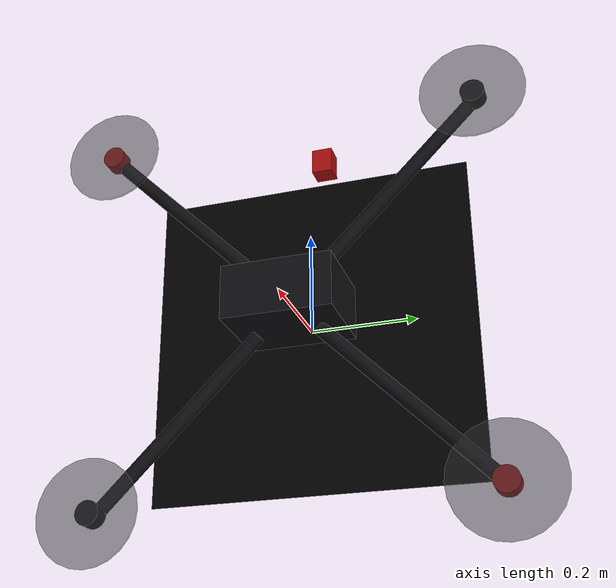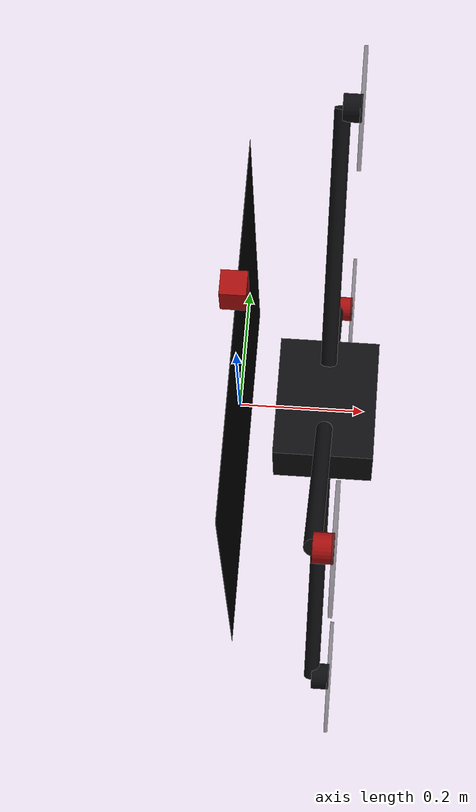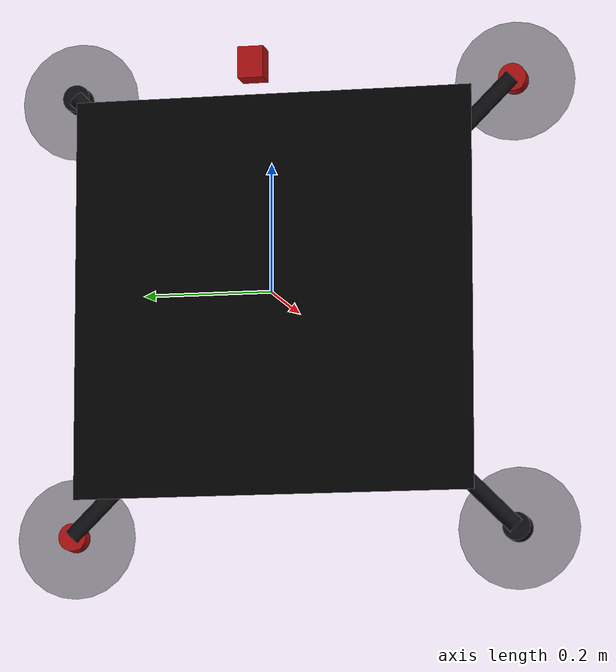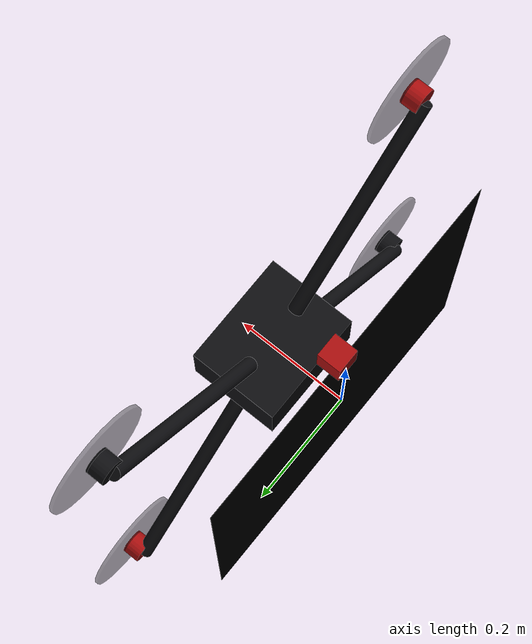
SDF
<?xml version="1.0" encoding="UTF-8"?>
<sdf version='1.9'>
  <model name='fpv_target'>
    <static>true</static>
    <link name='base'>

      <!-- ================= THE TAG (unchanged -- see header) ================= -->
      <visual name='tag_visual'>
        <pose>0 0 0 0 -1.5708 0</pose>
        <geometry>
          <plane>
            <normal>0 0 1</normal>
            <size>0.625 0.625</size>
          </plane>
        </geometry>
        <material>
          <ambient>0 0 0 1</ambient>
          <diffuse>0 0 0 1</diffuse>
          <specular>0 0 0 1</specular>
          <pbr>
            <metal>
              <albedo_map>model://apriltag_target/tag36h11_00000.png</albedo_map>
              <emissive_map>model://apriltag_target/tag36h11_00000.png</emissive_map>
              <roughness>1.0</roughness>
              <metalness>0.0</metalness>
            </metal>
          </pbr>
        </material>
      </visual>

      <visual name='body_visual'>
        <pose>0.14 0 0 0 0 -1.570796</pose>
        <geometry>
          <box>
            <size>0.20 0.16 0.10</size>
          </box>
        </geometry>
        <material>
          <ambient>0.03 0.03 0.035 1</ambient>
          <diffuse>0.05 0.05 0.06 1</diffuse>
          <specular>0.25 0.25 0.28 1</specular>
        </material>
      </visual>

      <visual name='arm_ne_visual'>
        <pose>0.14 -0.205061 0.205061 0.785398 0 0</pose>
        <geometry>
          <cylinder>
            <radius>0.013</radius>
            <length>0.42</length>
          </cylinder>
        </geometry>
        <material>
          <ambient>0.03 0.03 0.035 1</ambient>
          <diffuse>0.05 0.05 0.06 1</diffuse>
          <specular>0.25 0.25 0.28 1</specular>
        </material>
      </visual>
      <visual name='arm_se_visual'>
        <pose>0.14 -0.205061 -0.205061 2.356194 0 0</pose>
        <geometry>
          <cylinder>
            <radius>0.013</radius>
            <length>0.42</length>
          </cylinder>
        </geometry>
        <material>
          <ambient>0.03 0.03 0.035 1</ambient>
          <diffuse>0.05 0.05 0.06 1</diffuse>
          <specular>0.25 0.25 0.28 1</specular>
        </material>
      </visual>
      <visual name='arm_sw_visual'>
        <pose>0.14 0.205061 -0.205061 3.926991 0 0</pose>
        <geometry>
          <cylinder>
            <radius>0.013</radius>
            <length>0.42</length>
          </cylinder>
        </geometry>
        <material>
          <ambient>0.03 0.03 0.035 1</ambient>
          <diffuse>0.05 0.05 0.06 1</diffuse>
          <specular>0.25 0.25 0.28 1</specular>
        </material>
      </visual>
      <visual name='arm_nw_visual'>
        <pose>0.14 0.205061 0.205061 5.497787 0 0</pose>
        <geometry>
          <cylinder>
            <radius>0.013</radius>
            <length>0.42</length>
          </cylinder>
        </geometry>
        <material>
          <ambient>0.03 0.03 0.035 1</ambient>
          <diffuse>0.05 0.05 0.06 1</diffuse>
          <specular>0.25 0.25 0.28 1</specular>
        </material>
      </visual>

      <visual name='prop_ne_visual'>
        <pose>0.17 -0.353553 0.353553 0 1.570796 0</pose>
        <geometry>
          <cylinder>
            <radius>0.095</radius>
            <length>0.006</length>
          </cylinder>
        </geometry>
        <transparency>0.5</transparency>
        <material>
          <ambient>0.15 0.15 0.16 1</ambient>
          <diffuse>0.18 0.18 0.19 1</diffuse>
          <specular>0.3 0.3 0.3 1</specular>
        </material>
      </visual>
      <visual name='prop_se_visual'>
        <pose>0.17 -0.353553 -0.353553 0 1.570796 0</pose>
        <geometry>
          <cylinder>
            <radius>0.095</radius>
            <length>0.006</length>
          </cylinder>
        </geometry>
        <transparency>0.5</transparency>
        <material>
          <ambient>0.15 0.15 0.16 1</ambient>
          <diffuse>0.18 0.18 0.19 1</diffuse>
          <specular>0.3 0.3 0.3 1</specular>
        </material>
      </visual>
      <visual name='prop_sw_visual'>
        <pose>0.17 0.353553 -0.353553 0 1.570796 0</pose>
        <geometry>
          <cylinder>
            <radius>0.095</radius>
            <length>0.006</length>
          </cylinder>
        </geometry>
        <transparency>0.5</transparency>
        <material>
          <ambient>0.15 0.15 0.16 1</ambient>
          <diffuse>0.18 0.18 0.19 1</diffuse>
          <specular>0.3 0.3 0.3 1</specular>
        </material>
      </visual>
      <visual name='prop_nw_visual'>
        <pose>0.17 0.353553 0.353553 0 1.570796 0</pose>
        <geometry>
          <cylinder>
            <radius>0.095</radius>
            <length>0.006</length>
          </cylinder>
        </geometry>
        <transparency>0.5</transparency>
        <material>
          <ambient>0.15 0.15 0.16 1</ambient>
          <diffuse>0.18 0.18 0.19 1</diffuse>
          <specular>0.3 0.3 0.3 1</specular>
        </material>
      </visual>

      <visual name='hub_ne_visual'>
        <pose>0.155 -0.353553 0.353553 0 1.570796 0</pose>
        <geometry>
          <cylinder>
            <radius>0.022</radius>
            <length>0.03</length>
          </cylinder>
        </geometry>
        <material>
          <ambient>0.25 0.02 0.02 1</ambient>
          <diffuse>0.65 0.05 0.05 1</diffuse>
          <specular>0.3 0.1 0.1 1</specular>
        </material>
      </visual>
      <visual name='hub_se_visual'>
        <pose>0.155 -0.353553 -0.353553 0 1.570796 0</pose>
        <geometry>
          <cylinder>
            <radius>0.022</radius>
            <length>0.03</length>
          </cylinder>
        </geometry>
        <material>
          <ambient>0.03 0.03 0.035 1</ambient>
          <diffuse>0.05 0.05 0.06 1</diffuse>
          <specular>0.25 0.25 0.28 1</specular>
        </material>
      </visual>
      <visual name='hub_sw_visual'>
        <pose>0.155 0.353553 -0.353553 0 1.570796 0</pose>
        <geometry>
          <cylinder>
            <radius>0.022</radius>
            <length>0.03</length>
          </cylinder>
        </geometry>
        <material>
          <ambient>0.25 0.02 0.02 1</ambient>
          <diffuse>0.65 0.05 0.05 1</diffuse>
          <specular>0.3 0.1 0.1 1</specular>
        </material>
      </visual>
      <visual name='hub_nw_visual'>
        <pose>0.155 0.353553 0.353553 0 1.570796 0</pose>
        <geometry>
          <cylinder>
            <radius>0.022</radius>
            <length>0.03</length>
          </cylinder>
        </geometry>
        <material>
          <ambient>0.03 0.03 0.035 1</ambient>
          <diffuse>0.05 0.05 0.06 1</diffuse>
          <specular>0.25 0.25 0.28 1</specular>
        </material>
      </visual>

      <visual name='cam_nub_visual'>
        <pose>0 0.03 0.36 0 0 0</pose>
        <geometry>
          <box>
            <size>0.04 0.04 0.05</size>
          </box>
        </geometry>
        <material>
          <ambient>0.25 0.02 0.02 1</ambient>
          <diffuse>0.65 0.05 0.05 1</diffuse>
          <specular>0.3 0.1 0.1 1</specular>
        </material>
      </visual>

    </link>
  </model>
</sdf>
